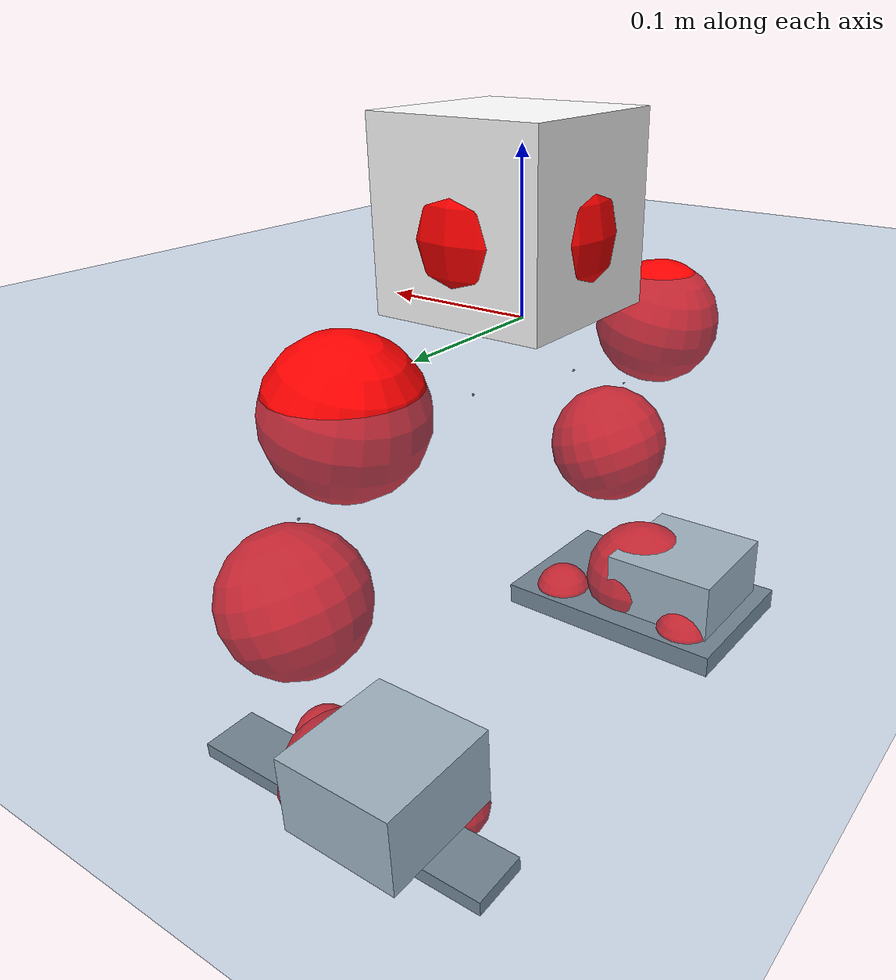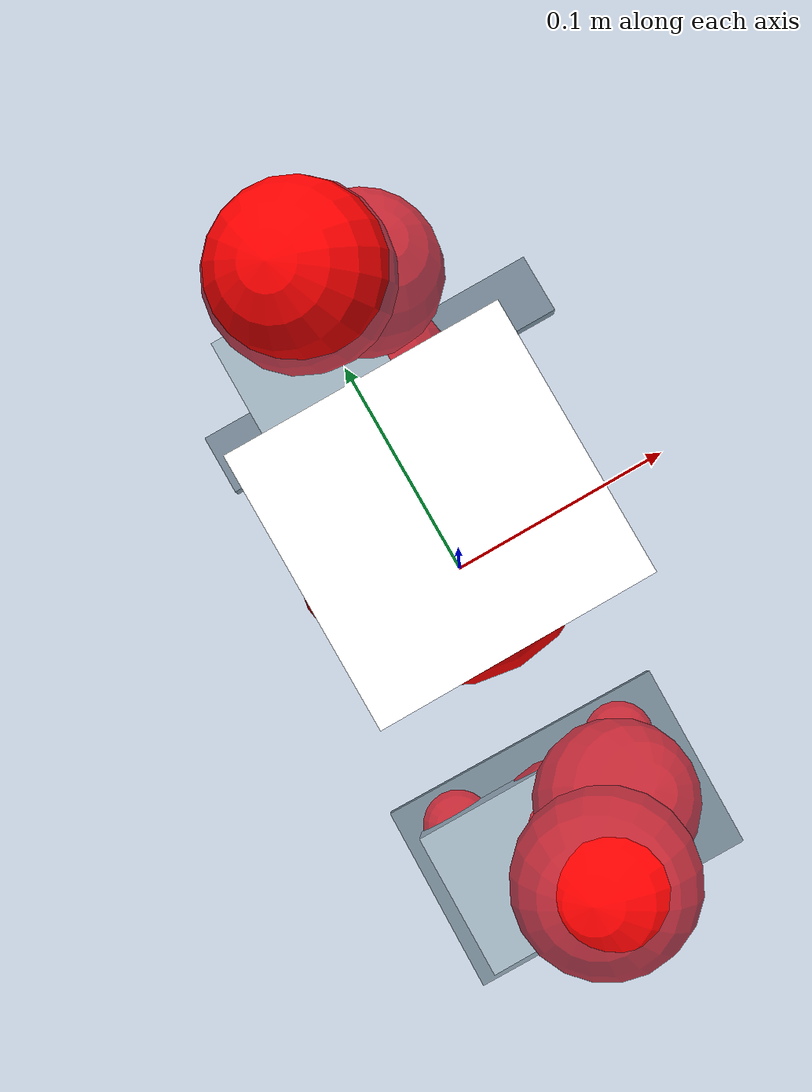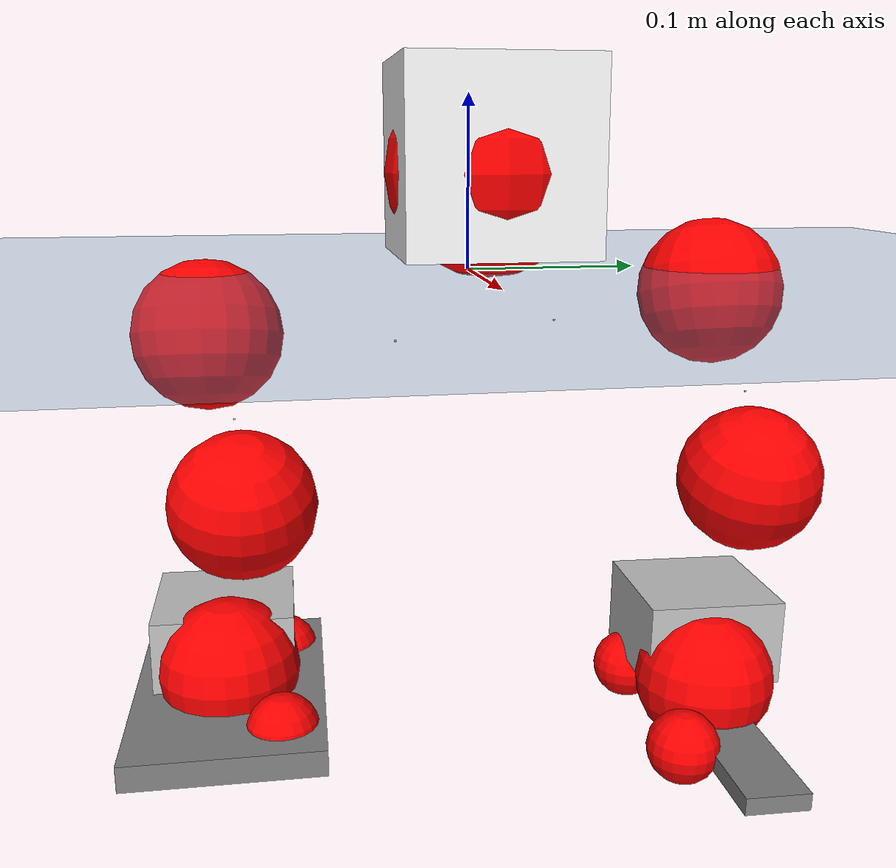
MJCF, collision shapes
<mujoco model="pi_12dof_release_v1">
  <compiler angle="radian" assetdir="assets" balanceinertia="true" inertiafromgeom="false"/>

  <option timestep="0.005" density="1.2" viscosity="2e-05"/>

  <size nkey="1"/>

  <visual>
    <quality shadowsize="8192"/>
    <map shadowclip="0.5"/>
  </visual>

  <default>
    <default class="/">
      <joint armature="0.01" damping="0.01" frictionloss="0.01"/>
      <geom contype="0" conaffinity="0" group="1" solref="-1000 -80"/>
      <site size="0.01 0.005 0.005" group="5"/>
      <general forcelimited="true" biastype="affine" gainprm="20" biasprm="0 -20 -0.5"/>
      <default class="foot">
        <geom size="0.0845 0.036 0.005" type="box" condim="6" group="4" priority="1" friction="0.9 0.2 0.2" solimp="0.015 1 0.005"/>
      </default>
      <default class="reward_collision_sphere">
        <geom group="5" rgba="1 0 0 1"/>
      </default>
    </default>
  </default>

  <asset>
    <texture type="skybox" colorspace="auto" name="//unnamed_texture_0" builtin="gradient" rgb1="0.95 0.95 0.95" rgb2="0.95 0.95 0.95" width="100" height="600"/>
    <texture type="2d" colorspace="auto" name="texplane" builtin="checker" rgb1="0.345 0.575 0.748" rgb2="0.345 0.575 0.748" markrgb="1 1 1" width="512" height="512"/>
    <material name="MatPlane" class="/" texture="texplane" texuniform="true" texrepeat="2 2" specular="0.9"/>
    <mesh name="baselink_1" class="/" file="baselink_1.STL"/>
    <mesh name="r_hip_pitch_link" class="/" file="r_hip_pitch_link.STL"/>
    <mesh name="r_hip_roll_link" class="/" file="r_hip_roll_link.STL"/>
    <mesh name="r_thigh_link" class="/" file="r_thigh_link.STL"/>
    <mesh name="r_calf_link" class="/" file="r_calf_link.STL"/>
    <mesh name="r_ankle_pitch_link" class="/" file="r_ankle_pitch_link.STL"/>
    <mesh name="r_ankle_roll_link" class="/" file="r_ankle_roll_link.STL"/>
    <mesh name="l_hip_pitch_link" class="/" file="l_hip_pitch_link.STL"/>
    <mesh name="l_hip_roll_link" class="/" file="l_hip_roll_link.STL"/>
    <mesh name="l_thigh_link" class="/" file="l_thigh_link.STL"/>
    <mesh name="l_calf_link" class="/" file="l_calf_link.STL"/>
    <mesh name="l_ankle_pitch_link" class="/" file="l_ankle_pitch_link.STL"/>
    <mesh name="l_ankle_roll_link" class="/" file="l_ankle_roll_link.STL"/>
  </asset>

  <worldbody>
    <geom name="floor" class="/" size="100 100 0.125" type="plane" group="0" material="MatPlane"/>
    <light name="toplight_shadow" class="/" pos="0 0 5" dir="0.0990148 0.0990148 -0.990148" type="directional" ambient="0.04 0.04 0.04" diffuse="0.55 0.55 0.55" specular="0.12 0.12 0.12"/>
    <light name="toplight_fill" class="/" pos="0 0 5" dir="0.0990148 0.0990148 -0.990148" type="directional" castshadow="false" ambient="0.04 0.04 0.04" diffuse="0.3 0.3 0.3" specular="0.08 0.08 0.08"/>
    <body name="trunk" pos="-0.000388489 0.0119098 -0.00225241" quat="1 2.05489e-05 6.18378e-05 6.63497e-05">
      <inertial pos="-0.00373546 0.0125616 0.034652" quat="0.643367 0.0191182 0.0551553 0.763329" mass="2.95409" diaginertia="0.00422226 0.127715 0.00161883"/>
      <joint name="//unnamed_joint_0" type="free"/>
      <geom name="//unnamed_geom_1" class="/" type="mesh" density="0" rgba="1 1 1 1" mesh="baselink_1"/>
      <geom name="//unnamed_geom_2" class="/" size="0.055252 0.055252 0.055252" pos="0 0 0.0662991" type="box" rgba="1 1 1 1"/>
      <geom name="//unnamed_geom_3" class="reward_collision_sphere" size="0.0607772" pos="0 0 0.0580117"/>
      <site name="imu" class="/" pos="-0.0578635 -0.0459347 0.0594689" size="0.0110504"/>
      <camera name="track" class="/" pos="0 -3.31912 0" quat="0.707107 0.707107 0 0" mode="trackcom"/>
      <camera name="ego_camera" class="/" pos="0.0620115 0 0.149173" quat="-0.5 -0.5 0.5 0.5"/>
      <body name="r_hip_pitch_link" pos="-0.0104567 -0.0547924 -0.0411832" quat="0.992603 -0.00408765 -0.121294 -0.00313715">
        <inertial pos="0.00415686 -0.0933164 -0.0085818" quat="-0.0135564 0.699252 -0.0220652 0.714407" mass="0.578137" diaginertia="4.11242e-05 0.0013482 3.11326e-05"/>
        <joint name="r_hip_pitch_joint" class="/" pos="0 0 0" axis="0.025558 -0.999424 0.0223381" stiffness="0.0064366" range="-1.73565 1.42913" armature="0.0107276" damping="0.0209257" frictionloss="0.0137859"/>
        <geom name="//unnamed_geom_4" class="/" type="mesh" density="0" rgba="0.75294 0.75294 0.75294 1" mesh="r_hip_pitch_link"/>
        <geom name="//unnamed_geom_5" class="/" size="0.00055252 0.00055252 0.00055252" type="box" rgba="0.75294 0.75294 0.75294 1"/>
        <body name="r_hip_roll_link" pos="0.00030534 -0.110476 0.0058749" quat="0.999985 -0.0029887 0.00457651 -0.000521871">
          <inertial pos="-0.012455 -0.00921654 -0.0544583" quat="0.704565 -0.0505401 -0.0229899 0.707464" mass="0.522924" diaginertia="0.000123031 0.00347615 5.28816e-05"/>
          <joint name="r_hip_roll_joint" class="/" pos="0 0 0" axis="-0.998688 0.0348731 -0.0374891" range="-0.107418 0.244814" armature="0.017284" damping="0.103466" frictionloss="0.0120144"/>
          <geom name="//unnamed_geom_6" class="/" type="mesh" density="0" rgba="0.75294 0.75294 0.75294 1" mesh="r_hip_roll_link"/>
          <geom name="//unnamed_geom_7" class="/" size="0.00055252 0.00055252 0.00055252" type="box" rgba="0.75294 0.75294 0.75294 1"/>
          <geom name="//unnamed_geom_8" class="reward_collision_sphere" size="0.0442016"/>
          <body name="r_thigh_link" pos="0.00577482 0.0144034 -0.0500465" quat="0.99999 -0.00175035 -0.00387401 -0.000985717">
            <inertial pos="-0.010201 0.00215575 -0.0237139" quat="0.736046 0.676931 0.000806409 0.000782774" mass="0.15824" diaginertia="5.55598e-05 0.000972959 2.70647e-05"/>
            <joint name="r_thigh_joint" class="/" pos="0 0 0" axis="0.000689538 0.00130091 -0.999999" stiffness="0.0470331" range="-0.0845007 0.581759" armature="0.0151034" damping="0" frictionloss="0.0109942"/>
            <geom name="//unnamed_geom_9" class="/" type="mesh" density="0" rgba="0.75294 0.75294 0.75294 1" mesh="r_thigh_link"/>
            <geom name="//unnamed_geom_10" class="/" size="0.00055252 0.00055252 0.00055252" type="box" rgba="0.75294 0.75294 0.75294 1"/>
            <body name="r_calf_link" pos="-0.00313768 0.00361427 -0.0505443" quat="0.94774 -0.000231687 0.319042 0.000148755">
              <inertial pos="0.00637233 -0.00651505 -0.0625356" quat="0.999937 0.00180319 0.00161341 0.0109171" mass="1.24855" diaginertia="0.0014207 0.0517506 5.62365e-05"/>
              <joint name="r_calf_joint" class="/" pos="0 0 0" axis="0.0364193 -0.998954 0.0276615" stiffness="0.0415411" range="-1.97892 0.475161" armature="0.0138174" damping="0.0129367" frictionloss="0.00643733"/>
              <geom name="//unnamed_geom_11" class="/" type="mesh" density="0" rgba="0.75294 0.75294 0.75294 1" mesh="r_calf_link"/>
              <geom name="//unnamed_geom_12" class="/" size="0.00055252 0.00055252 0.00055252" type="box" rgba="0.75294 0.75294 0.75294 1"/>
              <geom name="//unnamed_geom_13" class="reward_collision_sphere" size="0.0442016"/>
              <body name="r_ankle_pitch_link" pos="-0.0144917 -0.0159353 -0.125279" quat="0.980282 0.00386386 -0.197562 0.000961972">
                <inertial pos="0.012163 0.0217555 0.00162132" quat="-0.0317412 0.729123 0.00876908 0.68359" mass="0.172161" diaginertia="9.74074e-05 0.00236028 4.27809e-05"/>
                <joint name="r_ankle_pitch_joint" class="/" pos="0 0 0" axis="0.0542105 -0.997268 -0.0501818" range="-1.46111 0.208916" armature="0.0102964" damping="0" frictionloss="0.0147353"/>
                <geom name="//unnamed_geom_14" class="/" type="mesh" density="0" rgba="0.75294 0.75294 0.75294 1" mesh="r_ankle_pitch_link"/>
                <geom name="//unnamed_geom_15" class="/" size="0.0430965 0.0442016 0.027626" type="box" rgba="0.75294 0.75294 0.75294 1"/>
                <body name="r_ankle_roll_link" pos="0.0771675 0.00270994 0.00985996" quat="0.999978 0.00482418 -0.000470311 -0.0045194">
                  <inertial pos="-0.0264569 0.00112832 -0.0226906" quat="0.530076 0.413292 0.463502 0.577387" mass="0.685797" diaginertia="0.000415315 0.0131885 0.000103232"/>
                  <joint name="r_ankle_roll_joint" class="/" pos="0 0 0" axis="-0.999999 0.000151942 0.00133234" range="0.159069 0.15014" armature="0.0114538" damping="0.0254911" frictionloss="0.0157658"/>
                  <geom name="//unnamed_geom_16" class="/" type="mesh" density="0" rgba="0.75294 0.75294 0.75294 1" mesh="r_ankle_roll_link"/>
                  <geom name="//unnamed_geom_17" class="/" type="mesh" rgba="0.75294 0.75294 0.75294 1" mesh="r_ankle_roll_link"/>
                  <geom name="right_foot" class="foot" size="0.0900946 0.05885 0.00810922" pos="-0.0421678 0 -0.0364645"/>
                  <geom name="//unnamed_geom_19" class="reward_collision_sphere" size="0.0442016" pos="-0.041341 0 -0.0165748"/>
                  <geom name="//unnamed_geom_20" class="reward_collision_sphere" size="0.0221008" pos="0.0124023 0.0331912 -0.0331495"/>
                  <geom name="//unnamed_geom_21" class="reward_collision_sphere" size="0.0221008" pos="-0.0992183 0.0331912 -0.0331495"/>
                  <site name="right_foot" class="foot" pos="-0.0421678 0 -0.0364645" size="0.0110504"/>
                </body>
              </body>
            </body>
          </body>
        </body>
      </body>
      <body name="l_hip_pitch_link" pos="-0.00245753 0.0417483 -0.0299261" quat="0.992373 -0.00119006 -0.123237 -0.00255231">
        <inertial pos="0.000964901 0.102933 -0.00913024" quat="-0.028175 0.688566 0.0205925 0.724334" mass="0.443818" diaginertia="4.53969e-05 0.00120291 3.56529e-05"/>
        <joint name="l_hip_pitch_joint" class="/" pos="0 0 0" axis="-0.0104064 0.999933 -0.00507442" range="-1.24051 1.76958" armature="0.0124375" damping="0.0679569" frictionloss="0.00524944"/>
        <geom name="//unnamed_geom_22" class="/" type="mesh" density="0" rgba="0.75294 0.75294 0.75294 1" mesh="l_hip_pitch_link"/>
        <geom name="//unnamed_geom_23" class="/" size="0.00055252 0.00055252 0.00055252" type="box" rgba="0.75294 0.75294 0.75294 1"/>
        <body name="l_hip_roll_link" pos="0.00984524 0.0960413 0.0147844" quat="0.999998 0.00060652 -0.00214098 2.30896e-06">
          <inertial pos="-0.00105357 0.00277211 -0.0354714" quat="0.725732 -0.0877377 -0.0968919 0.675445" mass="0.382105" diaginertia="0.000125574 0.00290666 4.73118e-05"/>
          <joint name="l_hip_roll_joint" class="/" pos="0 0 0" axis="-0.998148 -0.0531986 0.0295089" stiffness="0.00136172" range="-0.205013 0.101123" armature="0.00413026" damping="0" frictionloss="0.00732165"/>
          <geom name="//unnamed_geom_24" class="/" type="mesh" density="0" rgba="0.75294 0.75294 0.75294 1" mesh="l_hip_roll_link"/>
          <geom name="//unnamed_geom_25" class="/" size="0.00055252 0.00055252 0.00055252" type="box" rgba="0.75294 0.75294 0.75294 1"/>
          <geom name="//unnamed_geom_26" class="reward_collision_sphere" size="0.0442016"/>
          <body name="l_thigh_link" pos="0.00949245 0.0162182 -0.0627195" quat="0.999997 -0.00221986 -0.000959506 -0.000142375">
            <inertial pos="0.00227606 -0.00207791 -0.0362739" quat="0.67174 0.740766 0.00121774 -0.00531871" mass="0.11749" diaginertia="3.53651e-05 0.00106799 2.0129e-05"/>
            <joint name="l_thigh_joint" class="/" pos="0 0 0" axis="-0.00374555 -0.00298696 -0.999989" stiffness="0.00187601" range="-0.667148 0.302359" armature="0.0162592" damping="0.00887655" frictionloss="0.0106139"/>
            <geom name="//unnamed_geom_27" class="/" type="mesh" density="0" rgba="0.75294 0.75294 0.75294 1" mesh="l_thigh_link"/>
            <geom name="//unnamed_geom_28" class="/" size="0.00055252 0.00055252 0.00055252" type="box" rgba="0.75294 0.75294 0.75294 1"/>
            <body name="l_calf_link" pos="-0.0059826 0.00310534 -0.0530377" quat="0.948101 -0.00351314 0.317903 0.00540098">
              <inertial pos="-0.00501248 -0.00663444 -0.0474741" quat="0.999554 0.00687926 0.00193974 0.0289842" mass="0.955436" diaginertia="0.00102851 0.0356695 4.94688e-05"/>
              <joint name="l_calf_joint" class="/" pos="0 0 0" axis="-0.00471604 0.998678 -0.0511928" stiffness="0.0313889" range="-0.743495 1.79517" armature="0.00826979" damping="0" frictionloss="0.00749868"/>
              <geom name="//unnamed_geom_29" class="/" type="mesh" density="0" rgba="0.75294 0.75294 0.75294 1" mesh="l_calf_link"/>
              <geom name="//unnamed_geom_30" class="/" size="0.00055252 0.00055252 0.00055252" type="box" rgba="0.75294 0.75294 0.75294 1"/>
              <geom name="//unnamed_geom_31" class="reward_collision_sphere" size="0.0442016"/>
              <body name="l_ankle_pitch_link" pos="3.85227e-05 -0.0109379 -0.123151" quat="0.980724 -0.00302575 -0.195302 -0.00523873">
                <inertial pos="0.00291926 0.0128081 -0.00950516" quat="-0.00658538 0.695219 -0.012279 0.718663" mass="0.261341" diaginertia="0.000129514 0.00308951 5.24216e-05"/>
                <joint name="l_ankle_pitch_joint" class="/" pos="0 0 0" axis="0.0136525 0.99989 0.00575597" stiffness="0.0328638" range="-0.26334 1.10286" armature="0.00959002" damping="0" frictionloss="0.0110161"/>
                <geom name="//unnamed_geom_32" class="/" type="mesh" density="0" rgba="0.75294 0.75294 0.75294 1" mesh="l_ankle_pitch_link"/>
                <geom name="//unnamed_geom_33" class="/" size="0.0430965 0.0442016 0.027626" type="box" rgba="0.75294 0.75294 0.75294 1"/>
                <body name="l_ankle_roll_link" pos="0.0791796 -0.00477471 -0.0062363" quat="0.999992 -0.00307856 9.99854e-05 0.00248972">
                  <inertial pos="-0.0362059 -0.00156883 -0.00644597" quat="0.550209 0.407029 0.440402 0.581071" mass="0.713139" diaginertia="0.000358679 0.0138631 0.000104557"/>
                  <joint name="l_ankle_roll_joint" class="/" pos="0 0 0" axis="-0.99687 -0.0701877 0.0363932" stiffness="0.0366512" range="-0.466374 0.383799" armature="0.00365715" damping="0" frictionloss="0.0183003"/>
                  <geom name="//unnamed_geom_34" class="/" type="mesh" density="0" rgba="0.75294 0.75294 0.75294 1" mesh="l_ankle_roll_link"/>
                  <geom name="//unnamed_geom_35" class="/" type="mesh" rgba="0.75294 0.75294 0.75294 1" mesh="l_ankle_roll_link"/>
                  <geom name="left_foot" class="foot" size="0.115361 0.0195774 0.00525486" pos="-0.0421678 0 -0.0364645"/>
                  <geom name="//unnamed_geom_37" class="reward_collision_sphere" size="0.0442016" pos="-0.041341 0 -0.0165748"/>
                  <geom name="//unnamed_geom_38" class="reward_collision_sphere" size="0.0221008" pos="0.0124023 -0.0331912 -0.0331495"/>
                  <geom name="//unnamed_geom_39" class="reward_collision_sphere" size="0.0221008" pos="-0.0992183 -0.0331912 -0.0331495"/>
                  <site name="left_foot" class="foot" pos="-0.0421678 0 -0.0364645" size="0.0110504"/>
                </body>
              </body>
            </body>
          </body>
        </body>
      </body>
    </body>
  </worldbody>

  <contact>
    <pair class="/" geom1="floor" geom2="right_foot" name="//unnamed_contact_1"/>
    <pair class="/" geom1="floor" geom2="left_foot" name="//unnamed_contact_0"/>
  </contact>

  <actuator>
    <general name="r_hip_pitch_joint" class="/" joint="r_hip_pitch_joint" forcerange="-27.7911 27.7911" gainprm="27.3498" biasprm="0 -27.3498 -0.637519"/>
    <general name="r_hip_roll_joint" class="/" joint="r_hip_roll_joint" forcerange="-23.8557 23.8557" gainprm="27.3498" biasprm="0 -27.3498 -0.637519"/>
    <general name="r_thigh_joint" class="/" joint="r_thigh_joint" forcerange="-14.0415 14.0415" gainprm="27.3498" biasprm="0 -27.3498 -0.637519"/>
    <general name="r_calf_joint" class="/" joint="r_calf_joint" forcerange="-35.0233 35.0233" gainprm="27.3498" biasprm="0 -27.3498 -0.637519"/>
    <general name="r_ankle_pitch_joint" class="/" joint="r_ankle_pitch_joint" forcerange="-10.4785 10.4785" gainprm="27.3498" biasprm="0 -27.3498 -0.637519"/>
    <general name="r_ankle_roll_joint" class="/" joint="r_ankle_roll_joint" forcerange="-10.3998 10.3998" gainprm="27.3498" biasprm="0 -27.3498 -0.637519"/>
    <general name="l_hip_pitch_joint" class="/" joint="l_hip_pitch_joint" forcerange="-9.00481 9.00481" gainprm="27.3498" biasprm="0 -27.3498 -0.637519"/>
    <general name="l_hip_roll_joint" class="/" joint="l_hip_roll_joint" forcerange="-32.3842 32.3842" gainprm="27.3498" biasprm="0 -27.3498 -0.637519"/>
    <general name="l_thigh_joint" class="/" joint="l_thigh_joint" forcerange="-28.26 28.26" gainprm="27.3498" biasprm="0 -27.3498 -0.637519"/>
    <general name="l_calf_joint" class="/" joint="l_calf_joint" forcerange="-10.4633 10.4633" gainprm="27.3498" biasprm="0 -27.3498 -0.637519"/>
    <general name="l_ankle_pitch_joint" class="/" joint="l_ankle_pitch_joint" forcerange="-10.4322 10.4322" gainprm="27.3498" biasprm="0 -27.3498 -0.637519"/>
    <general name="l_ankle_roll_joint" class="/" joint="l_ankle_roll_joint" forcerange="-14.1989 14.1989" gainprm="27.3498" biasprm="0 -27.3498 -0.637519"/>
  </actuator>

  <sensor>
    <gyro site="imu" name="imu_angular_velocity"/>
    <velocimeter site="imu" name="imu_linear_velocity"/>
    <framelinvel objtype="site" objname="left_foot" name="left_foot_global_linear_velocity"/>
    <framelinvel objtype="site" objname="right_foot" name="right_foot_global_linear_velocity"/>
  </sensor>

  <keyframe>
    <key name="home" qpos="0 0 0.291 1 0 0 0 0.4 0 0 -0.8 0.4 0 -0.4 0 0 0.8 -0.4 0"/>
  </keyframe>
</mujoco>
